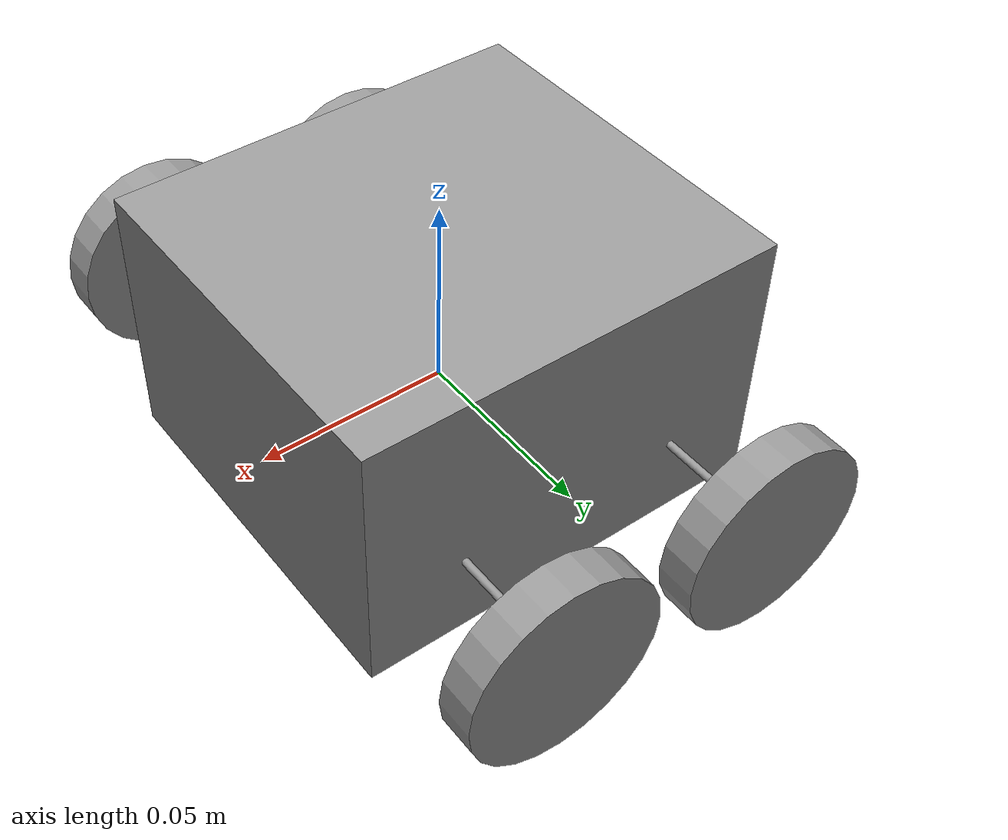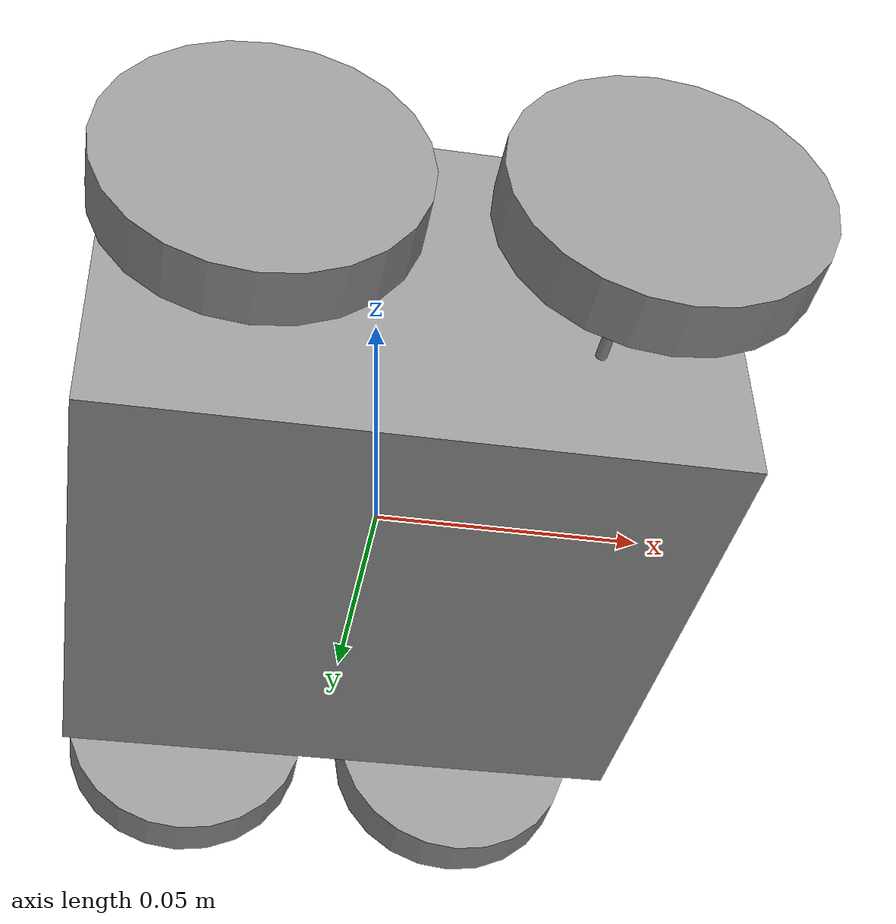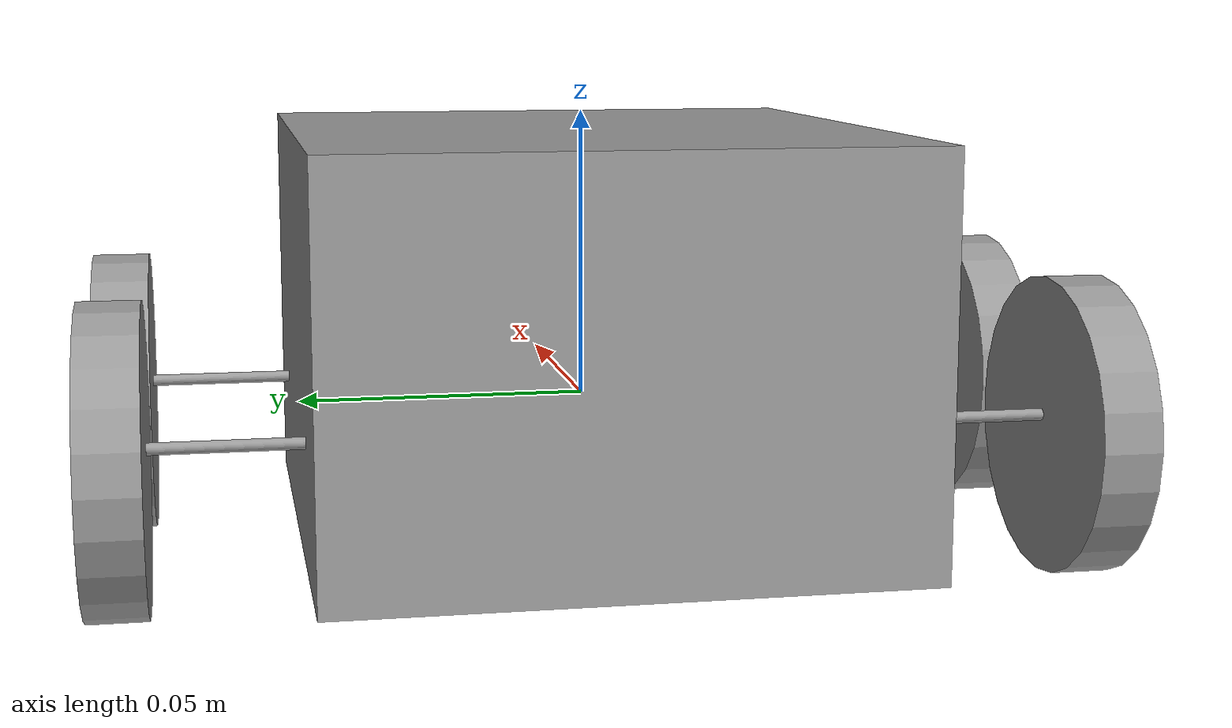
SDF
<?xml version='1.0'?>
<sdf version='1.6'>
  <model name='Scout'>
    <link name='link_5'>
      <pose frame=''>0.000124 0.000467 0.012036 0 1.5707 0</pose>
      <inertial>
        <mass>1</mass>
        <inertia>
          <ixx>0.166667</ixx>
          <ixy>0</ixy>
          <ixz>0</ixz>
          <iyy>0.166667</iyy>
          <iyz>0</iyz>
          <izz>0.166667</izz>
        </inertia>
        <pose frame=''>0 0 0 0 -0 0</pose>
      </inertial>
      <gravity>1</gravity>
      <self_collide>0</self_collide>
      <kinematic>0</kinematic>
      <visual name='visual'>
        <pose frame=''>0 0 0 0 -0 0</pose>
        <geometry>
          <box>
            <size>0.07 0.1 0.11</size>
          </box>
        </geometry>
        <material>
          <lighting>1</lighting>
          <script>
            <uri>file://media/materials/scripts/gazebo.material</uri>
            <name>Gazebo/Grey</name>
          </script>
          <shader type='pixel'>
            <normal_map>__default__</normal_map>
          </shader>
          <ambient>0.3 0.3 0.3 1</ambient>
          <diffuse>0.7 0.7 0.7 1</diffuse>
          <specular>0.01 0.01 0.01 1</specular>
          <emissive>0 0 0 1</emissive>
        </material>
        <transparency>0</transparency>
        <cast_shadows>1</cast_shadows>
      </visual>
      <collision name='collision'>
        <laser_retro>0</laser_retro>
        <max_contacts>10</max_contacts>
        <pose frame=''>0 0 0 0 -0 0</pose>
        <geometry>
          <box>
            <size>0.07 0.1 0.11</size>
          </box>
        </geometry>
        <surface>
          <friction>
            <ode>
              <mu>1</mu>
              <mu2>1</mu2>
              <fdir1>0 0 0</fdir1>
              <slip1>0</slip1>
              <slip2>0</slip2>
            </ode>
            <torsional>
              <coefficient>1</coefficient>
              <patch_radius>0</patch_radius>
              <surface_radius>0</surface_radius>
              <use_patch_radius>1</use_patch_radius>
              <ode>
                <slip>0</slip>
              </ode>
            </torsional>
          </friction>
          <bounce>
            <restitution_coefficient>0</restitution_coefficient>
            <threshold>1e+06</threshold>
          </bounce>
          <contact>
            <collide_without_contact>0</collide_without_contact>
            <collide_without_contact_bitmask>1</collide_without_contact_bitmask>
            <collide_bitmask>1</collide_bitmask>
            <ode>
              <soft_cfm>0</soft_cfm>
              <soft_erp>0.2</soft_erp>
              <kp>1e+13</kp>
              <kd>1</kd>
              <max_vel>0.01</max_vel>
              <min_depth>0</min_depth>
            </ode>
            <bullet>
              <split_impulse>1</split_impulse>
              <split_impulse_penetration_threshold>-0.01</split_impulse_penetration_threshold>
              <soft_cfm>0</soft_cfm>
              <soft_erp>0.2</soft_erp>
              <kp>1e+13</kp>
              <kd>1</kd>
            </bullet>
          </contact>
        </surface>
      </collision>
    </link>
    <link name='link_6'>
      <pose frame=''>0.030124 -0.082817 -0.002561 1.5707 -0 0</pose>
      <inertial>
        <mass>1</mass>
        <inertia>
          <ixx>0.145833</ixx>
          <ixy>0</ixy>
          <ixz>0</ixz>
          <iyy>0.145833</iyy>
          <iyz>0</iyz>
          <izz>0.125</izz>
        </inertia>
        <pose frame=''>0 0 0 0 -0 0</pose>
      </inertial>
      <gravity>1</gravity>
      <self_collide>0</self_collide>
      <kinematic>0</kinematic>
      <visual name='visual'>
        <pose frame=''>0 0 0 0 -0 0</pose>
        <geometry>
          <cylinder>
            <radius>0.0254</radius>
            <length>0.01</length>
          </cylinder>
        </geometry>
        <material>
          <lighting>1</lighting>
          <script>
            <uri>file://media/materials/scripts/gazebo.material</uri>
            <name>Gazebo/Grey</name>
          </script>
          <shader type='pixel'>
            <normal_map>__default__</normal_map>
          </shader>
          <ambient>0.3 0.3 0.3 1</ambient>
          <diffuse>0.7 0.7 0.7 1</diffuse>
          <specular>0.01 0.01 0.01 1</specular>
          <emissive>0 0 0 1</emissive>
        </material>
        <transparency>0</transparency>
        <cast_shadows>1</cast_shadows>
      </visual>
      <collision name='collision'>
        <laser_retro>0</laser_retro>
        <max_contacts>10</max_contacts>
        <pose frame=''>0 0 0 0 -0 0</pose>
        <geometry>
          <cylinder>
            <radius>0.0254</radius>
            <length>0.01</length>
          </cylinder>
        </geometry>
        <surface>
          <friction>
            <ode>
              <mu>1</mu>
              <mu2>1</mu2>
              <fdir1>0 0 0</fdir1>
              <slip1>0</slip1>
              <slip2>0</slip2>
            </ode>
            <torsional>
              <coefficient>1</coefficient>
              <patch_radius>0</patch_radius>
              <surface_radius>0</surface_radius>
              <use_patch_radius>1</use_patch_radius>
              <ode>
                <slip>0</slip>
              </ode>
            </torsional>
          </friction>
          <bounce>
            <restitution_coefficient>0</restitution_coefficient>
            <threshold>1e+06</threshold>
          </bounce>
          <contact>
            <collide_without_contact>0</collide_without_contact>
            <collide_without_contact_bitmask>1</collide_without_contact_bitmask>
            <collide_bitmask>1</collide_bitmask>
            <ode>
              <soft_cfm>0</soft_cfm>
              <soft_erp>0.2</soft_erp>
              <kp>1e+13</kp>
              <kd>1</kd>
              <max_vel>0.01</max_vel>
              <min_depth>0</min_depth>
            </ode>
            <bullet>
              <split_impulse>1</split_impulse>
              <split_impulse_penetration_threshold>-0.01</split_impulse_penetration_threshold>
              <soft_cfm>0</soft_cfm>
              <soft_erp>0.2</soft_erp>
              <kp>1e+13</kp>
              <kd>1</kd>
            </bullet>
          </contact>
        </surface>
      </collision>
    </link>
    <link name='link_6_clone'>
      <pose frame=''>-0.029876 -0.079536 -0.002561 1.5707 -0 0</pose>
      <inertial>
        <mass>1</mass>
        <inertia>
          <ixx>0.145833</ixx>
          <ixy>0</ixy>
          <ixz>0</ixz>
          <iyy>0.145833</iyy>
          <iyz>0</iyz>
          <izz>0.125</izz>
        </inertia>
        <pose frame=''>0 0 0 0 -0 0</pose>
      </inertial>
      <self_collide>0</self_collide>
      <kinematic>0</kinematic>
      <gravity>1</gravity>
      <visual name='visual'>
        <pose frame=''>0 0 0 0 -0 0</pose>
        <geometry>
          <cylinder>
            <radius>0.0254</radius>
            <length>0.01</length>
          </cylinder>
        </geometry>
        <material>
          <lighting>1</lighting>
          <script>
            <uri>file://media/materials/scripts/gazebo.material</uri>
            <name>Gazebo/Grey</name>
          </script>
          <shader type='pixel'>
            <normal_map>__default__</normal_map>
          </shader>
          <ambient>0.3 0.3 0.3 1</ambient>
          <diffuse>0.7 0.7 0.7 1</diffuse>
          <specular>0.01 0.01 0.01 1</specular>
          <emissive>0 0 0 1</emissive>
        </material>
        <transparency>0</transparency>
        <cast_shadows>1</cast_shadows>
      </visual>
      <collision name='collision'>
        <laser_retro>0</laser_retro>
        <max_contacts>10</max_contacts>
        <pose frame=''>0 0 0 0 -0 0</pose>
        <geometry>
          <cylinder>
            <radius>0.0254</radius>
            <length>0.01</length>
          </cylinder>
        </geometry>
        <surface>
          <friction>
            <ode>
              <mu>1</mu>
              <mu2>1</mu2>
              <fdir1>0 0 0</fdir1>
              <slip1>0</slip1>
              <slip2>0</slip2>
            </ode>
            <torsional>
              <coefficient>1</coefficient>
              <patch_radius>0</patch_radius>
              <surface_radius>0</surface_radius>
              <use_patch_radius>1</use_patch_radius>
              <ode>
                <slip>0</slip>
              </ode>
            </torsional>
          </friction>
          <bounce>
            <restitution_coefficient>0</restitution_coefficient>
            <threshold>1e+06</threshold>
          </bounce>
          <contact>
            <collide_without_contact>0</collide_without_contact>
            <collide_without_contact_bitmask>1</collide_without_contact_bitmask>
            <collide_bitmask>1</collide_bitmask>
            <ode>
              <soft_cfm>0</soft_cfm>
              <soft_erp>0.2</soft_erp>
              <kp>1e+13</kp>
              <kd>1</kd>
              <max_vel>0.01</max_vel>
              <min_depth>0</min_depth>
            </ode>
            <bullet>
              <split_impulse>1</split_impulse>
              <split_impulse_penetration_threshold>-0.01</split_impulse_penetration_threshold>
              <soft_cfm>0</soft_cfm>
              <soft_erp>0.2</soft_erp>
              <kp>1e+13</kp>
              <kd>1</kd>
            </bullet>
          </contact>
        </surface>
      </collision>
    </link>
    <link name='link_6_clone_0'>
      <pose frame=''>0.02967 0.080483 -0.002563 1.5707 -0 0</pose>
      <inertial>
        <mass>1</mass>
        <inertia>
          <ixx>0.145833</ixx>
          <ixy>0</ixy>
          <ixz>0</ixz>
          <iyy>0.145833</iyy>
          <iyz>0</iyz>
          <izz>0.125</izz>
        </inertia>
        <pose frame=''>0 0 0 0 -0 0</pose>
      </inertial>
      <self_collide>0</self_collide>
      <kinematic>0</kinematic>
      <visual name='visual'>
        <pose frame=''>0 0 0 0 -0 0</pose>
        <geometry>
          <cylinder>
            <radius>0.0254</radius>
            <length>0.01</length>
          </cylinder>
        </geometry>
        <material>
          <lighting>1</lighting>
          <script>
            <uri>file://media/materials/scripts/gazebo.material</uri>
            <name>Gazebo/Grey</name>
          </script>
          <shader type='pixel'>
            <normal_map>__default__</normal_map>
          </shader>
          <ambient>0.3 0.3 0.3 1</ambient>
          <diffuse>0.7 0.7 0.7 1</diffuse>
          <specular>0.01 0.01 0.01 1</specular>
          <emissive>0 0 0 1</emissive>
        </material>
        <transparency>0</transparency>
        <cast_shadows>1</cast_shadows>
      </visual>
      <collision name='collision'>
        <laser_retro>0</laser_retro>
        <max_contacts>10</max_contacts>
        <pose frame=''>0 0 0 0 -0 0</pose>
        <geometry>
          <cylinder>
            <radius>0.0254</radius>
            <length>0.01</length>
          </cylinder>
        </geometry>
        <surface>
          <friction>
            <ode>
              <mu>1</mu>
              <mu2>1</mu2>
              <fdir1>0 0 0</fdir1>
              <slip1>0</slip1>
              <slip2>0</slip2>
            </ode>
            <torsional>
              <coefficient>1</coefficient>
              <patch_radius>0</patch_radius>
              <surface_radius>0</surface_radius>
              <use_patch_radius>1</use_patch_radius>
              <ode>
                <slip>0</slip>
              </ode>
            </torsional>
          </friction>
          <bounce>
            <restitution_coefficient>0</restitution_coefficient>
            <threshold>1e+06</threshold>
          </bounce>
          <contact>
            <collide_without_contact>0</collide_without_contact>
            <collide_without_contact_bitmask>1</collide_without_contact_bitmask>
            <collide_bitmask>1</collide_bitmask>
            <ode>
              <soft_cfm>0</soft_cfm>
              <soft_erp>0.2</soft_erp>
              <kp>1e+13</kp>
              <kd>1</kd>
              <max_vel>0.01</max_vel>
              <min_depth>0</min_depth>
            </ode>
            <bullet>
              <split_impulse>1</split_impulse>
              <split_impulse_penetration_threshold>-0.01</split_impulse_penetration_threshold>
              <soft_cfm>0</soft_cfm>
              <soft_erp>0.2</soft_erp>
              <kp>1e+13</kp>
              <kd>1</kd>
            </bullet>
          </contact>
        </surface>
      </collision>
    </link>
    <link name='link_6_clone_1'>
      <pose frame=''>-0.029876 0.080469 -0.002563 1.5707 -0 0</pose>
      <inertial>
        <mass>1</mass>
        <inertia>
          <ixx>0.145833</ixx>
          <ixy>0</ixy>
          <ixz>0</ixz>
          <iyy>0.145833</iyy>
          <iyz>0</iyz>
          <izz>0.125</izz>
        </inertia>
        <pose frame=''>0 0 0 0 -0 0</pose>
      </inertial>
      <self_collide>0</self_collide>
      <kinematic>0</kinematic>
      <gravity>1</gravity>
      <visual name='visual'>
        <pose frame=''>0 0 0 0 -0 0</pose>
        <geometry>
          <cylinder>
            <radius>0.0254</radius>
            <length>0.01</length>
          </cylinder>
        </geometry>
        <material>
          <lighting>1</lighting>
          <script>
            <uri>file://media/materials/scripts/gazebo.material</uri>
            <name>Gazebo/Grey</name>
          </script>
          <shader type='pixel'>
            <normal_map>__default__</normal_map>
          </shader>
          <ambient>0.3 0.3 0.3 1</ambient>
          <diffuse>0.7 0.7 0.7 1</diffuse>
          <specular>0.01 0.01 0.01 1</specular>
          <emissive>0 0 0 1</emissive>
        </material>
        <transparency>0</transparency>
        <cast_shadows>1</cast_shadows>
      </visual>
      <collision name='collision'>
        <laser_retro>0</laser_retro>
        <max_contacts>10</max_contacts>
        <pose frame=''>0 0 0 0 -0 0</pose>
        <geometry>
          <cylinder>
            <radius>0.0254</radius>
            <length>0.01</length>
          </cylinder>
        </geometry>
        <surface>
          <friction>
            <ode>
              <mu>1</mu>
              <mu2>1</mu2>
              <fdir1>0 0 0</fdir1>
              <slip1>0</slip1>
              <slip2>0</slip2>
            </ode>
            <torsional>
              <coefficient>1</coefficient>
              <patch_radius>0</patch_radius>
              <surface_radius>0</surface_radius>
              <use_patch_radius>1</use_patch_radius>
              <ode>
                <slip>0</slip>
              </ode>
            </torsional>
          </friction>
          <bounce>
            <restitution_coefficient>0</restitution_coefficient>
            <threshold>1e+06</threshold>
          </bounce>
          <contact>
            <collide_without_contact>0</collide_without_contact>
            <collide_without_contact_bitmask>1</collide_without_contact_bitmask>
            <collide_bitmask>1</collide_bitmask>
            <ode>
              <soft_cfm>0</soft_cfm>
              <soft_erp>0.2</soft_erp>
              <kp>1e+13</kp>
              <kd>1</kd>
              <max_vel>0.01</max_vel>
              <min_depth>0</min_depth>
            </ode>
            <bullet>
              <split_impulse>1</split_impulse>
              <split_impulse_penetration_threshold>-0.01</split_impulse_penetration_threshold>
              <soft_cfm>0</soft_cfm>
              <soft_erp>0.2</soft_erp>
              <kp>1e+13</kp>
              <kd>1</kd>
            </bullet>
          </contact>
        </surface>
      </collision>
    </link>
    <link name='link_7'>
      <pose frame=''>0.029712 0.000467 -0.000894 1.5707 -0 0</pose>
      <inertial>
        <mass>1</mass>
        <inertia>
          <ixx>0.145833</ixx>
          <ixy>0</ixy>
          <ixz>0</ixz>
          <iyy>0.145833</iyy>
          <iyz>0</iyz>
          <izz>0.125</izz>
        </inertia>
        <pose frame=''>0 0 0 0 -0 0</pose>
      </inertial>
      <gravity>1</gravity>
      <self_collide>0</self_collide>
      <kinematic>0</kinematic>
      <visual name='visual'>
        <pose frame=''>0 0 0 0 -0 0</pose>
        <geometry>
          <cylinder>
            <radius>0.001</radius>
            <length>0.15</length>
          </cylinder>
        </geometry>
        <material>
          <lighting>1</lighting>
          <script>
            <uri>file://media/materials/scripts/gazebo.material</uri>
            <name>Gazebo/Grey</name>
          </script>
          <shader type='pixel'>
            <normal_map>__default__</normal_map>
          </shader>
          <ambient>0.3 0.3 0.3 1</ambient>
          <diffuse>0.7 0.7 0.7 1</diffuse>
          <specular>0.01 0.01 0.01 1</specular>
          <emissive>0 0 0 1</emissive>
        </material>
        <transparency>0</transparency>
        <cast_shadows>1</cast_shadows>
      </visual>
      <collision name='collision'>
        <laser_retro>0</laser_retro>
        <max_contacts>10</max_contacts>
        <pose frame=''>0 0 0 0 -0 0</pose>
        <geometry>
          <cylinder>
            <radius>0.001</radius>
            <length>0.15</length>
          </cylinder>
        </geometry>
        <surface>
          <friction>
            <ode>
              <mu>1</mu>
              <mu2>1</mu2>
              <fdir1>0 0 0</fdir1>
              <slip1>0</slip1>
              <slip2>0</slip2>
            </ode>
            <torsional>
              <coefficient>1</coefficient>
              <patch_radius>0</patch_radius>
              <surface_radius>0</surface_radius>
              <use_patch_radius>1</use_patch_radius>
              <ode>
                <slip>0</slip>
              </ode>
            </torsional>
          </friction>
          <bounce>
            <restitution_coefficient>0</restitution_coefficient>
            <threshold>1e+06</threshold>
          </bounce>
          <contact>
            <collide_without_contact>0</collide_without_contact>
            <collide_without_contact_bitmask>1</collide_without_contact_bitmask>
            <collide_bitmask>1</collide_bitmask>
            <ode>
              <soft_cfm>0</soft_cfm>
              <soft_erp>0.2</soft_erp>
              <kp>1e+13</kp>
              <kd>1</kd>
              <max_vel>0.01</max_vel>
              <min_depth>0</min_depth>
            </ode>
            <bullet>
              <split_impulse>1</split_impulse>
              <split_impulse_penetration_threshold>-0.01</split_impulse_penetration_threshold>
              <soft_cfm>0</soft_cfm>
              <soft_erp>0.2</soft_erp>
              <kp>1e+13</kp>
              <kd>1</kd>
            </bullet>
          </contact>
        </surface>
      </collision>
    </link>
    <link name='link_7_clone'>
      <pose frame=''>-0.029876 0.000467 -0.000894 1.5707 -0 0</pose>
      <inertial>
        <mass>1</mass>
        <inertia>
          <ixx>0.145833</ixx>
          <ixy>0</ixy>
          <ixz>0</ixz>
          <iyy>0.145833</iyy>
          <iyz>0</iyz>
          <izz>0.125</izz>
        </inertia>
        <pose frame=''>0 0 0 0 -0 0</pose>
      </inertial>
      <self_collide>0</self_collide>
      <kinematic>0</kinematic>
      <gravity>1</gravity>
      <visual name='visual'>
        <pose frame=''>0 0 0 0 -0 0</pose>
        <geometry>
          <cylinder>
            <radius>0.001</radius>
            <length>0.15</length>
          </cylinder>
        </geometry>
        <material>
          <lighting>1</lighting>
          <script>
            <uri>file://media/materials/scripts/gazebo.material</uri>
            <name>Gazebo/Grey</name>
          </script>
          <shader type='pixel'>
            <normal_map>__default__</normal_map>
          </shader>
          <ambient>0.3 0.3 0.3 1</ambient>
          <diffuse>0.7 0.7 0.7 1</diffuse>
          <specular>0.01 0.01 0.01 1</specular>
          <emissive>0 0 0 1</emissive>
        </material>
        <transparency>0</transparency>
        <cast_shadows>1</cast_shadows>
      </visual>
      <collision name='collision'>
        <laser_retro>0</laser_retro>
        <max_contacts>10</max_contacts>
        <pose frame=''>0 0 0 0 -0 0</pose>
        <geometry>
          <cylinder>
            <radius>0.001</radius>
            <length>0.15</length>
          </cylinder>
        </geometry>
        <surface>
          <friction>
            <ode>
              <mu>1</mu>
              <mu2>1</mu2>
              <fdir1>0 0 0</fdir1>
              <slip1>0</slip1>
              <slip2>0</slip2>
            </ode>
            <torsional>
              <coefficient>1</coefficient>
              <patch_radius>0</patch_radius>
              <surface_radius>0</surface_radius>
              <use_patch_radius>1</use_patch_radius>
              <ode>
                <slip>0</slip>
              </ode>
            </torsional>
          </friction>
          <bounce>
            <restitution_coefficient>0</restitution_coefficient>
            <threshold>1e+06</threshold>
          </bounce>
          <contact>
            <collide_without_contact>0</collide_without_contact>
            <collide_without_contact_bitmask>1</collide_without_contact_bitmask>
            <collide_bitmask>1</collide_bitmask>
            <ode>
              <soft_cfm>0</soft_cfm>
              <soft_erp>0.2</soft_erp>
              <kp>1e+13</kp>
              <kd>1</kd>
              <max_vel>0.01</max_vel>
              <min_depth>0</min_depth>
            </ode>
            <bullet>
              <split_impulse>1</split_impulse>
              <split_impulse_penetration_threshold>-0.01</split_impulse_penetration_threshold>
              <soft_cfm>0</soft_cfm>
              <soft_erp>0.2</soft_erp>
              <kp>1e+13</kp>
              <kd>1</kd>
            </bullet>
          </contact>
        </surface>
      </collision>
    </link>
    <joint name='link_5_JOINT_13' type='fixed'>
      <parent>link_5</parent>
      <child>link_7</child>
      <pose frame=''>0 0 0 0 -0 0</pose>
      <physics>
        <ode>
          <limit>
            <cfm>0</cfm>
            <erp>0.2</erp>
          </limit>
          <suspension>
            <cfm>0</cfm>
            <erp>0.2</erp>
          </suspension>
        </ode>
      </physics>
    </joint>
    <joint name='link_5_JOINT_14' type='fixed'>
      <parent>link_5</parent>
      <child>link_7_clone</child>
      <pose frame=''>0 0 0 0 -0 0</pose>
      <physics>
        <ode>
          <limit>
            <cfm>0</cfm>
            <erp>0.2</erp>
          </limit>
          <suspension>
            <cfm>0</cfm>
            <erp>0.2</erp>
          </suspension>
        </ode>
      </physics>
    </joint>
    <joint name='link_7_JOINT_12' type='revolute'>
      <parent>link_7</parent>
      <child>link_6</child>
      <pose frame=''>0 0 0 0 -0 0</pose>
      <axis>
        <xyz>1 0 0</xyz>
        <use_parent_model_frame>0</use_parent_model_frame>
        <limit>
          <lower>-1.79769e+308</lower>
          <upper>1.79769e+308</upper>
          <effort>-1</effort>
          <velocity>-1</velocity>
        </limit>
        <dynamics>
          <spring_reference>0</spring_reference>
          <spring_stiffness>0</spring_stiffness>
          <damping>0</damping>
        </dynamics>
      </axis>
      <physics>
        <ode>
          <limit>
            <cfm>0</cfm>
            <erp>0.2</erp>
          </limit>
          <suspension>
            <cfm>0</cfm>
            <erp>0.2</erp>
          </suspension>
        </ode>
      </physics>
    </joint>
    <joint name='link_7_JOINT_8' type='revolute'>
      <parent>link_7</parent>
      <child>link_6_clone_0</child>
      <pose frame=''>0 0 0 0 -0 0</pose>
      <axis>
        <xyz>1 0 0</xyz>
        <use_parent_model_frame>0</use_parent_model_frame>
        <limit>
          <lower>-1.79769e+308</lower>
          <upper>1.79769e+308</upper>
          <effort>-1</effort>
          <velocity>-1</velocity>
        </limit>
        <dynamics>
          <spring_reference>0</spring_reference>
          <spring_stiffness>0</spring_stiffness>
          <damping>0</damping>
          <friction>0</friction>
        </dynamics>
      </axis>
      <physics>
        <ode>
          <limit>
            <cfm>0</cfm>
            <erp>0.2</erp>
          </limit>
          <suspension>
            <cfm>0</cfm>
            <erp>0.2</erp>
          </suspension>
        </ode>
      </physics>
    </joint>
    <joint name='link_7_clone_JOINT_10' type='revolute'>
      <parent>link_7_clone</parent>
      <child>link_6_clone_1</child>
      <pose frame=''>0 0 0 0 -0 0</pose>
      <axis>
        <xyz>1 0 0</xyz>
        <use_parent_model_frame>0</use_parent_model_frame>
        <limit>
          <lower>-1.79769e+308</lower>
          <upper>1.79769e+308</upper>
          <effort>-1</effort>
          <velocity>-1</velocity>
        </limit>
        <dynamics>
          <spring_reference>0</spring_reference>
          <spring_stiffness>0</spring_stiffness>
          <damping>0</damping>
          <friction>0</friction>
        </dynamics>
      </axis>
      <physics>
        <ode>
          <limit>
            <cfm>0</cfm>
            <erp>0.2</erp>
          </limit>
          <suspension>
            <cfm>0</cfm>
            <erp>0.2</erp>
          </suspension>
        </ode>
      </physics>
    </joint>
    <joint name='link_7_clone_JOINT_11' type='revolute'>
      <parent>link_7_clone</parent>
      <child>link_6_clone</child>
      <pose frame=''>0 0 0 0 -0 0</pose>
      <axis>
        <xyz>1 0 0</xyz>
        <use_parent_model_frame>0</use_parent_model_frame>
        <limit>
          <lower>-1.79769e+308</lower>
          <upper>1.79769e+308</upper>
          <effort>-1</effort>
          <velocity>-1</velocity>
        </limit>
        <dynamics>
          <spring_reference>0</spring_reference>
          <spring_stiffness>0</spring_stiffness>
          <damping>0</damping>
        </dynamics>
      </axis>
      <physics>
        <ode>
          <limit>
            <cfm>0</cfm>
            <erp>0.2</erp>
          </limit>
          <suspension>
            <cfm>0</cfm>
            <erp>0.2</erp>
          </suspension>
        </ode>
      </physics>
    </joint>
    <static>0</static>
    <allow_auto_disable>1</allow_auto_disable>
  </model>
</sdf>
